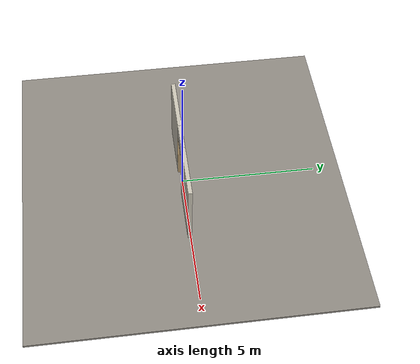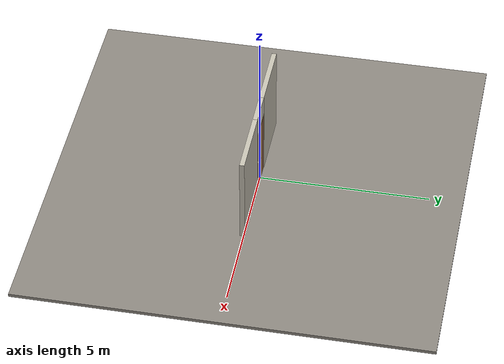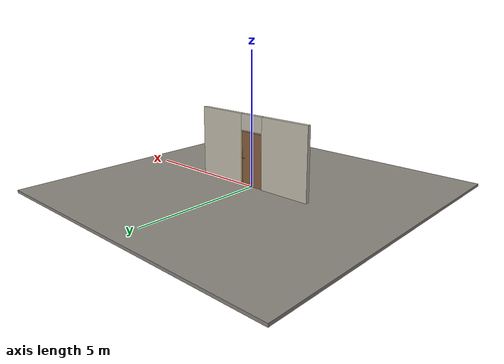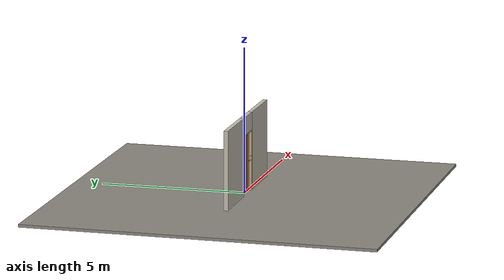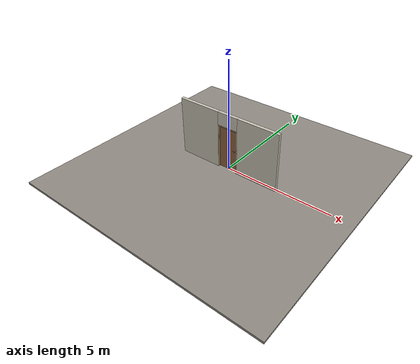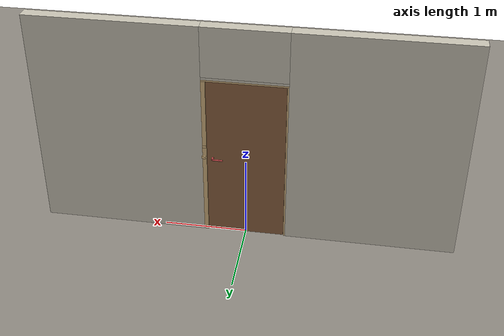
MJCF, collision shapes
<?xml version="1.0" ?>
<mujoco model="db0664_swing_single_minimal">
  <compiler angle="radian" meshdir="../../hardware" texturedir="../../textures" autolimits="true" inertiafromgeom="false"/>
  <option timestep="0.002" integrator="implicitfast" cone="elliptic" impratio="10" noslip_iterations="3">
    <flag multiccd="enable"/>
  </option>
  <size memory="16M"/>
  <default>
    <geom condim="4" solref="0.005 1" solimp="0.95 0.99 0.001"/>
    <joint solreflimit="0.005 1" solimplimit="0.95 0.99 0.001"/>
    <tendon solreflimit="0.005 1"/>
    <equality solref="0.002 1"/>
  </default>
  <visual>
    <headlight ambient="0.4 0.4 0.4" diffuse="0.7 0.7 0.7" specular="0.2 0.2 0.2"/>
    <quality shadowsize="4096"/>
    <map znear="0.01" zfar="60"/>
  </visual>
  <asset>
    <mesh name="lever_9f02b544cf" file="lever_9f02b544cf.obj"/>
    <material name="mat_floor" rgba="0.55 0.53 0.5 1" specular="0.2" shininess="0.15" reflectance="0"/>
    <material name="mat_wall" rgba="0.78 0.76 0.7 1" specular="0.2" shininess="0.1" reflectance="0"/>
    <material name="mat_leaf" rgba="0.542 0.378 0.247 1" specular="0.2" shininess="0.45" reflectance="0"/>
    <material name="mat_leaf_panel" rgba="0.499 0.348 0.227 1" specular="0.2" shininess="0.45" reflectance="0"/>
    <material name="mat_hinge" rgba="0.65 0.66 0.68 1" specular="0.74" shininess="0.5" reflectance="0.36"/>
    <material name="mat_op_nickel_satin" rgba="0.72 0.7 0.66 1" specular="0.8" shininess="0.65" reflectance="0.4"/>
    <material name="mat_trim" rgba="0.85 0.66 0.3 1" specular="0.8" shininess="0.75" reflectance="0.4"/>
    <material name="mat_bolt" rgba="0.85 0.66 0.3 1" specular="0.8" shininess="0.75" reflectance="0.4"/>
    <material name="mat_night_latch" rgba="0.55 0.42 0.22 1" specular="0.74" shininess="0.45" reflectance="0.36"/>
    <material name="mat_deadbolt" rgba="0.85 0.66 0.3 1" specular="0.8" shininess="0.75" reflectance="0.4"/>
    <material name="mat_frame" rgba="0.82 0.7 0.5 1" specular="0.2" shininess="0.45" reflectance="0"/>
    <material name="mat_transom" rgba="0.85 0.92 0.95 0.25" specular="0.2" shininess="0.95" reflectance="0.1"/>
    <texture name="skybox" type="skybox" builtin="gradient" rgb1="0.6 0.7 0.85" rgb2="0.9 0.92 0.95" width="256" height="256"/>
  </asset>
  <worldbody>
    <light name="sun" pos="1.5 -2.5 4" dir="-0.3 0.5 -0.8" directional="true" diffuse="0.8 0.8 0.8" specular="0.3 0.3 0.3" castshadow="true"/>
    <light name="fill" pos="-1.5 2.5 3" dir="0.3 -0.5 -0.7" directional="true" diffuse="0.35 0.35 0.4" castshadow="false"/>
    <camera name="robot_view" pos="0 -2.585687 1.734312" xyaxes="1 0 0 0 0.26963 0.962964" fovy="52"/>
    <camera name="far_view" pos="0 2.498687 1.734312" xyaxes="-1 0 0 0 -0.26963 0.962964" fovy="52"/>
    <camera name="iso" pos="1.932062 -2.178937 2.141063" xyaxes="0.741536 0.670913 0 -0.242917 0.268487 0.932151" fovy="46"/>
    <camera name="detail_handle" pos="0.4665 -0.877 1.33" xyaxes="0.97561 0.219512 0 -0.070934 0.315262 0.94635" fovy="38"/>
    <geom name="floor" type="box" size="6 6 0.05" pos="0 0 -0.05" material="mat_floor" group="0" contype="1" conaffinity="1" friction="0.8 0.005 0.0001" density="2400"/>
    <geom name="wall_left" type="box" size="1.01025 0.0725 1.35" pos="-1.48975 -0.0435 1.35" material="mat_wall" group="0" contype="1" conaffinity="1" friction="0.6 0.005 0.0001" density="800"/>
    <geom name="wall_right" type="box" size="0.99525 0.0725 1.35" pos="1.50475 -0.0435 1.35" material="mat_wall" group="0" contype="1" conaffinity="1" friction="0.6 0.005 0.0001" density="800"/>
    <geom name="wall_header" type="box" size="0.4945 0.0725 0.303" pos="0.015 -0.0435 2.397" material="mat_wall" group="0" contype="1" conaffinity="1" friction="0.6 0.005 0.0001" density="800"/>
    <geom name="jamb_hinge" type="box" size="0.0095 0.0725 1.0225" pos="-0.47 -0.0435 1.0225" material="mat_frame" group="0" contype="1" conaffinity="1" friction="0.6 0.005 0.0001" density="400"/>
    <geom name="strike_1050_wall_n" type="box" size="0.0245 0.054075 0.0167" pos="0.485 -0.061925 1.05" material="mat_frame" group="0" contype="1" conaffinity="1" friction="0.6 0.005 0.0001" density="400"/>
    <geom name="strike_1050_wall_p" type="box" size="0.0245 0.008 0.0167" pos="0.485 0.01585 1.05" material="mat_frame" group="0" contype="1" conaffinity="1" friction="0.6 0.005 0.0001" density="400"/>
    <geom name="strike_1050_ramp" type="box" size="0.0245 0.01649 0.0167" pos="0.489636 0.028673 1.05" quat="0.977148 0 0 -0.212558" material="mat_frame" group="0" contype="1" conaffinity="1" friction="0.12 0.005 0.0001" density="400"/>
    <geom name="strike_1050_back" type="box" size="0.01615 0.00785 0.0167" pos="0.49335 0 1.05" material="mat_frame" group="0" contype="1" conaffinity="1" friction="0.6 0.005 0.0001" density="400"/>
    <geom name="strike_1190_wall_n" type="box" size="0.0245 0.05325 0.0155" pos="0.485 -0.06275 1.19" material="mat_frame" group="0" contype="1" conaffinity="1" friction="0.6 0.005 0.0001" density="400"/>
    <geom name="strike_1190_wall_p" type="box" size="0.0245 0.00975 0.0155" pos="0.485 0.01925 1.19" material="mat_frame" group="0" contype="1" conaffinity="1" friction="0.6 0.005 0.0001" density="400"/>
    <geom name="strike_1190_back" type="box" size="0.0145 0.0095 0.0155" pos="0.495 0 1.19" material="mat_frame" group="0" contype="1" conaffinity="1" friction="0.6 0.005 0.0001" density="400"/>
    <geom name="jamb_strike_0" type="box" size="0.0245 0.0725 0.51665" pos="0.485 -0.0435 0.51665" material="mat_frame" group="0" contype="1" conaffinity="1" friction="0.6 0.005 0.0001" density="400"/>
    <geom name="jamb_strike_1" type="box" size="0.0245 0.0725 0.0539" pos="0.485 -0.0435 1.1206" material="mat_frame" group="0" contype="1" conaffinity="1" friction="0.6 0.005 0.0001" density="400"/>
    <geom name="jamb_strike_2" type="box" size="0.0245 0.0725 0.41975" pos="0.485 -0.0435 1.62525" material="mat_frame" group="0" contype="1" conaffinity="1" friction="0.6 0.005 0.0001" density="400"/>
    <geom name="jamb_head" type="box" size="0.4945 0.0725 0.0095" pos="0.015 -0.0435 2.0545" material="mat_frame" group="0" contype="1" conaffinity="1" friction="0.6 0.005 0.0001" density="400"/>
    <geom name="head_stud" type="box" size="0.4945 0.0725 0.015" pos="0.015 -0.0435 2.079" material="mat_wall" group="0" contype="1" conaffinity="1" friction="0.6 0.005 0.0001" density="500"/>
    <geom name="stop_hinge" type="box" size="0.0055 0.016 1.0225" pos="-0.455 -0.0385 1.0225" material="mat_frame" group="0" contype="1" conaffinity="1" friction="0.6 0.005 0.0001" density="400"/>
    <geom name="stop_strike" type="box" size="0.0055 0.016 1.0225" pos="0.455 -0.0385 1.0225" material="mat_frame" group="0" contype="1" conaffinity="1" friction="0.6 0.005 0.0001" density="400"/>
    <geom name="stop_head" type="box" size="0.4605 0.016 0.0055" pos="0 -0.0385 2.0395" material="mat_frame" group="0" contype="1" conaffinity="1" friction="0.6 0.005 0.0001" density="400"/>
    <site name="approach_point" pos="0 -1.5 0" quat="1 0 0 0" size="0.05" rgba="0.2 0.9 0.2 0.5" group="4"/>
    <site name="goal_point" pos="0 1.5 0" quat="1 0 0 0" size="0.05" rgba="0.2 0.9 0.2 0.5" group="4"/>
    <site name="door_plane_center" pos="0 0 1.0225" quat="1 0 0 0" size="0.02" rgba="0.2 0.9 0.2 0.5" group="4"/>
    <body name="leaf" pos="-0.4605 0 0">
      <inertial pos="0.46 0 1.025" mass="43.216693" quat="-0.5 0.5 0.5 0.5" diaginertia="3.015560005 14.877202542 17.878817961"/>
      <joint name="leaf_hinge" type="hinge" axis="0 0 1" pos="0.003 0.029 0" limited="true" range="0 2.356194" damping="0.30611" frictionloss="0.188358" armature="0.02"/>
      <geom name="leaf_slab" type="box" size="0.457 0.022 1.016" pos="0.46 0 1.025" material="mat_leaf" group="0" contype="1" conaffinity="1" friction="0.35 0.005 0.0001" density="1"/>
      <site name="leaf_edge_mid" pos="0.917 0 1.016" quat="1 0 0 0" size="0.02" rgba="0.2 0.9 0.2 0.5" group="4"/>
      <body name="leaf_handle" pos="0.847 0 1.05">
        <inertial pos="-0.030188 0 0" mass="0.924918" quat="0.707107 0 0 -0.707107" diaginertia="0.001725188 0.003587995 0.005135939"/>
        <joint name="leaf_handle_hinge" type="hinge" axis="0 -1 0" limited="true" range="0 0.96" damping="0.245624" frictionloss="0.048" stiffness="1.2" springref="-0.458333" armature="0.01"/>
        <geom name="leaf_handle_lever_n" type="mesh" mesh="lever_9f02b544cf" pos="0 -0.022 0" quat="0.707107 0.707107 0 0" material="mat_op_nickel_satin" group="1" contype="0" conaffinity="0" density="3000"/>
        <geom name="leaf_handle_lever_col_n" type="capsule" size="0.0095 0.053" pos="-0.0625 -0.077 0" quat="0.707107 0 -0.707107 0" material="mat_op_nickel_satin" group="3" contype="1" conaffinity="1" rgba="0.8 0.3 0.3 0.25" friction="0.7 0.01 0.0001" density="3000"/>
        <geom name="leaf_handle_hub_col_n" type="cylinder" size="0.012 0.022" pos="0 -0.052 0" quat="0.707107 -0.707107 0 0" material="mat_op_nickel_satin" group="3" contype="1" conaffinity="1" rgba="0.8 0.3 0.3 0.25" friction="0.6 0.005 0.0001" density="3000"/>
        <geom name="leaf_handle_lever_p" type="mesh" mesh="lever_9f02b544cf" pos="0 0.022 0" quat="-0.707107 0.707107 0 0" material="mat_op_nickel_satin" group="1" contype="0" conaffinity="0" density="3000"/>
        <geom name="leaf_handle_lever_col_p" type="capsule" size="0.0095 0.053" pos="-0.0625 0.077 0" quat="0.707107 0 -0.707107 0" material="mat_op_nickel_satin" group="3" contype="1" conaffinity="1" rgba="0.8 0.3 0.3 0.25" friction="0.7 0.01 0.0001" density="3000"/>
        <geom name="leaf_handle_hub_col_p" type="cylinder" size="0.012 0.022" pos="0 0.052 0" quat="0.707107 -0.707107 0 0" material="mat_op_nickel_satin" group="3" contype="1" conaffinity="1" rgba="0.8 0.3 0.3 0.25" friction="0.6 0.005 0.0001" density="3000"/>
        <site name="leaf_handle_grip_n" pos="-0.1 -0.077 0" quat="1 0 0 0" size="0.012" rgba="0.2 0.9 0.2 0.5" group="4"/>
        <site name="leaf_handle_grip_p" pos="-0.1 0.077 0" quat="1 0 0 0" size="0.012" rgba="0.2 0.9 0.2 0.5" group="4"/>
      </body>
      <body name="leaf_latch_bolt" pos="0.917 0 1.05">
        <inertial pos="-0.00865 0 0" mass="0.041419" quat="0.92388 -0.382683 0 0" diaginertia="0.000000798 0.000005598 0.000005598"/>
        <joint name="leaf_latch_bolt_slide" type="slide" axis="-1 0 0" limited="true" range="0 0.0127" damping="2" frictionloss="0.3" stiffness="300" springref="-0.008333" armature="0.1"/>
        <geom name="leaf_latch_bolt_capsule" type="capsule" size="0.00635 0.015" pos="-0.00865 0 0" quat="0.707107 0 0.707107 0" material="mat_bolt" group="0" contype="1" conaffinity="1" friction="0.2 0.005 0.0001" density="8500"/>
      </body>
    </body>
  </worldbody>
  <tendon>
    <fixed name="leaf_latch_bolt_coupling" limited="true" range="0 10">
      <joint joint="leaf_latch_bolt_slide" coef="1"/>
      <joint joint="leaf_handle_hinge" coef="-0.013956"/>
    </fixed>
  </tendon>
  <sensor>
    <jointpos name="leaf_hinge_pos" joint="leaf_hinge"/>
    <jointvel name="leaf_hinge_vel" joint="leaf_hinge"/>
    <jointpos name="leaf_handle_hinge_pos" joint="leaf_handle_hinge"/>
    <jointvel name="leaf_handle_hinge_vel" joint="leaf_handle_hinge"/>
    <jointpos name="leaf_latch_bolt_slide_pos" joint="leaf_latch_bolt_slide"/>
    <jointvel name="leaf_latch_bolt_slide_vel" joint="leaf_latch_bolt_slide"/>
  </sensor>
</mujoco>
